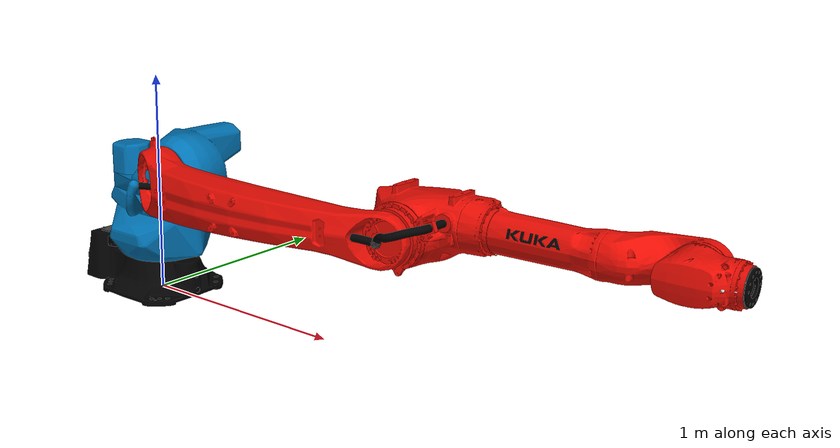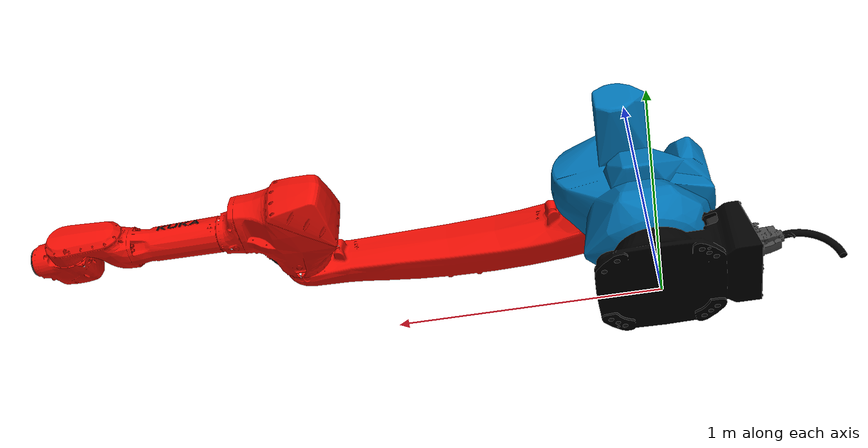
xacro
<?xml version="1.0" encoding="UTF-8"?>
<robot xmlns:xacro="http://ros.org/wiki/xacro" name="kr50_r2500">
  <!-- Import urdf file  -->
  <xacro:include filename="$(find kuka_iontec_support)/urdf/kr50_r2500_macro.xacro"/>
  <xacro:include filename="$(find kuka_iontec_support)/urdf/kr_iontec_ros2_control_macro.xacro"/>
  <!-- Read additional arguments  -->
  <xacro:arg name="driver_version" default="rsi_only"/>
  <xacro:arg name="mode" default="hardware"/>
  <xacro:arg name="gpio_config" default=""/>
  <xacro:arg name="roundtrip_time" default="0"/>
  <xacro:arg name="client_ip" default="0.0.0.0"/>
  <xacro:arg name="client_port" default="59152"/>
  <xacro:arg name="mxa_client_port" default="1337"/>
  <xacro:arg name="controller_ip" default="0.0.0.0"/>
  <xacro:arg name="verify_robot_model" default="true"/>
  <xacro:arg name="prefix" default=""/>
  <xacro:arg name="x" default="0"/>
  <xacro:arg name="y" default="0"/>
  <xacro:arg name="z" default="0"/>
  <xacro:arg name="roll" default="0"/>
  <xacro:arg name="pitch" default="0"/>
  <xacro:arg name="yaw" default="0"/>
  <xacro:arg name="rsi_xml_config_file" default=""/>
  <xacro:kuka_iontec_ros2_control name="$(arg prefix)kr50_r2500" driver_version="$(arg driver_version)" client_ip="$(arg client_ip)" client_port="$(arg client_port)" mxa_client_port="$(arg mxa_client_port)" controller_ip="$(arg controller_ip)" prefix="$(arg prefix)" mode="$(arg mode)" gpio_config="$(arg gpio_config)" roundtrip_time="$(arg roundtrip_time)" verify_robot_model="$(arg verify_robot_model)" rsi_xml_config_file="$(arg rsi_xml_config_file)">
    <ext_axes_ros2_control_joints/>
  </xacro:kuka_iontec_ros2_control>
  <!-- world link -->
  <link name="world"/>
  <!-- robot links, joints -->
  <xacro:kuka_kr50_r2500_robot prefix="$(arg prefix)" package_name="kuka_iontec_support"/>
  <!-- default world - base_link joint -->
  <joint name="$(arg prefix)world-base_link" type="fixed">
    <parent link="world"/>
    <child link="$(arg prefix)base_link"/>
    <origin xyz="$(arg x) $(arg y) $(arg z)" rpy="$(arg roll) $(arg pitch) $(arg yaw)"/>
  </joint>
</robot>

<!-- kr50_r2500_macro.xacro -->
<robot xmlns:xacro="http://www.ros.org/wiki/xacro" name="kr50_r2500">
  <xacro:macro name="kuka_kr50_r2500_robot" params="prefix package_name">
    <link name="${prefix}base"/>
    <link name="${prefix}base_link">
      <collision>
        <geometry>
          <mesh filename="package://${package_name}/meshes/kr50_r2500/collision/base_link.stl"/>
        </geometry>
        <origin rpy="0.0 -0.0 0.0" xyz="0.0 0.0 0.0"/>
      </collision>
      <inertial>
        <inertia ixx="3.21771450042138" ixy="0.0" ixz="0.0" iyy="2.20944166758376" iyz="0.0" izz="3.52194780966785"/>
        <mass value="1.1102E2"/>
        <origin rpy="-0.09552224276473971 0.005165689953881887 1.5692512343174831" xyz="-0.0353407754502021 3.24880558618159E-4 0.169880117603822"/>
      </inertial>
      <visual>
        <geometry>
          <mesh filename="package://${package_name}/meshes/kr50_r2500/visual/base_link.dae"/>
        </geometry>
        <origin rpy="0.0 -0.0 0.0" xyz="0.0 0.0 0.0"/>
      </visual>
    </link>
    <link name="${prefix}flange"/>
    <link name="${prefix}link_1">
      <collision>
        <geometry>
          <mesh filename="package://${package_name}/meshes/kr50_r2500/collision/link_1.stl"/>
        </geometry>
        <origin rpy="-3.141592653589793 0.0 -0.0" xyz="0.0 -2.890166445987754e-17 0.23600000000000002"/>
      </collision>
      <inertial>
        <inertia ixx="5.40709339054184" ixy="0.0" ixz="0.0" iyy="7.71982652844139" iyz="0.0" izz="9.08867781161129"/>
        <mass value="1.75205E2"/>
        <origin rpy="-0.7923258603339001 -0.8943966305036485 2.6984590381230245" xyz="0.0386086184755001 -0.0346095020119289 -0.237989526554607"/>
      </inertial>
      <visual>
        <geometry>
          <mesh filename="package://${package_name}/meshes/kr50_r2500/visual/link_1.dae"/>
        </geometry>
        <origin rpy="-3.141592653589793 0.0 -0.0" xyz="0.0 -2.890166445987754e-17 0.23600000000000002"/>
      </visual>
    </link>
    <link name="${prefix}link_2">
      <collision>
        <geometry>
          <mesh filename="package://${package_name}/meshes/kr50_r2500/collision/link_2.stl"/>
        </geometry>
        <origin rpy="1.5707963267948968 -0.0 1.5707963267948966" xyz="-0.5750000000000001 -0.175 0.05400000000000006"/>
      </collision>
      <inertial>
        <inertia ixx="34.4473098933026" ixy="0.0" ixz="0.0" iyy="1.82338350185872" iyz="0.0" izz="34.9457113145669"/>
        <mass value="1.3116E2"/>
        <origin rpy="2.1123221767766847 -1.457644221591364 -0.5475882223919419" xyz="0.482423909728576 0.0018571058249466298 -0.115943671851174"/>
      </inertial>
      <visual>
        <geometry>
          <mesh filename="package://${package_name}/meshes/kr50_r2500/visual/link_2.dae"/>
        </geometry>
        <origin rpy="1.5707963267948968 -0.0 1.5707963267948966" xyz="-0.5750000000000001 -0.175 0.05400000000000006"/>
      </visual>
    </link>
    <link name="${prefix}link_3">
      <collision>
        <geometry>
          <mesh filename="package://${package_name}/meshes/kr50_r2500/collision/link_3.stl"/>
        </geometry>
        <origin rpy="1.5707963267948968 -0.0 -0.0" xyz="-0.1750000000000001 1.865 0.15150000000000005"/>
      </collision>
      <inertial>
        <inertia ixx="1.92337293034476" ixy="0.0" ixz="0.0" iyy="1.27849052849714" iyz="0.0" izz="2.39171458731211"/>
        <mass value="7.6987E1"/>
        <origin rpy="-1.4493563584878786 -1.5363130245492544 2.877566531592554" xyz="0.0313301089794381 -0.020586332757478502 0.14882084299946702"/>
      </inertial>
      <visual>
        <geometry>
          <mesh filename="package://${package_name}/meshes/kr50_r2500/visual/link_3.dae"/>
        </geometry>
        <origin rpy="1.5707963267948968 -0.0 -0.0" xyz="-0.1750000000000001 1.865 0.15150000000000005"/>
      </visual>
    </link>
    <link name="${prefix}link_4">
      <collision>
        <geometry>
          <mesh filename="package://${package_name}/meshes/kr50_r2500/collision/link_4.stl"/>
        </geometry>
        <origin rpy="1.8369701987210297e-16 1.5707963267948966 0.0" xyz="-1.915 4.025548071885061e-17 0.48305"/>
      </collision>
      <inertial>
        <inertia ixx="0.155169399999395" ixy="0.0" ixz="0.0" iyy="2.40535850557874" iyz="0.0" izz="2.40600523859326"/>
        <mass value="3.6937064569E1"/>
        <origin rpy="0.8285897980910851 -1.4728909399076815 -1.576276607483943" xyz="1.89432198144002E-4 0.024470785786346698 -0.41246255028967"/>
      </inertial>
      <visual>
        <geometry>
          <mesh filename="package://${package_name}/meshes/kr50_r2500/visual/link_4.dae"/>
        </geometry>
        <origin rpy="1.8369701987210297e-16 1.5707963267948966 0.0" xyz="-1.915 4.025548071885061e-17 0.48305"/>
      </visual>
    </link>
    <link name="${prefix}link_5">
      <collision>
        <geometry>
          <mesh filename="package://${package_name}/meshes/kr50_r2500/collision/link_5.stl"/>
        </geometry>
        <origin rpy="1.5707963267948968 -3.749399456654644e-33 -6.123233995736766e-17" xyz="-1.21 1.915 -0.04795000000000001"/>
      </collision>
      <inertial>
        <inertia ixx="0.104253153076611" ixy="0.0" ixz="0.0" iyy="0.080454547765652" iyz="0.0" izz="0.129775394933814"/>
        <mass value="1.6209E1"/>
        <origin rpy="-1.5546090234283156 -1.0268303292864123 -0.02236297629804863" xyz="0.0338747121969276 4.7815719661916203E-4 -0.0563914652353631"/>
      </inertial>
      <visual>
        <geometry>
          <mesh filename="package://${package_name}/meshes/kr50_r2500/visual/link_5.dae"/>
        </geometry>
        <origin rpy="1.5707963267948968 -3.749399456654644e-33 -6.123233995736766e-17" xyz="-1.21 1.915 -0.04795000000000001"/>
      </visual>
    </link>
    <link name="${prefix}link_6">
      <collision>
        <geometry>
          <mesh filename="package://${package_name}/meshes/kr50_r2500/collision/link_6.stl"/>
        </geometry>
        <origin rpy="1.2246467991473532e-16 1.5707963267948966 0.0" xyz="-1.9150000000000003 -7.512976725390683e-17 1.359"/>
      </collision>
      <inertial>
        <inertia ixx="0.00543884122921238" ixy="0.0" ixz="0.0" iyy="0.00497050004638771" iyz="0.0" izz="0.00667989273554355"/>
        <mass value="3.62E0"/>
        <origin rpy="-0.2657207469665607 5.14585534055515E-4 1.571146297496868" xyz="-0.00392541436464088 5.41436464088398E-6 -0.00152140883977901"/>
      </inertial>
      <visual>
        <geometry>
          <mesh filename="package://${package_name}/meshes/kr50_r2500/visual/link_6.dae"/>
        </geometry>
        <origin rpy="1.2246467991473532e-16 1.5707963267948966 0.0" xyz="-1.9150000000000003 -7.512976725390683e-17 1.359"/>
      </visual>
    </link>
    <link name="${prefix}tool0"/>
    <joint name="${prefix}base_link-base" type="fixed">
      <child link="${prefix}base"/>
      <parent link="${prefix}base_link"/>
    </joint>
    <joint name="${prefix}joint_1" type="revolute">
      <axis xyz="0.0 0.0 1.0"/>
      <child link="${prefix}link_1"/>
      <limit effort="5.528892E3" lower="-3.2288591125E0" upper="3.2288591125E0" velocity="3.05432619099008E0"/>
      <origin rpy="3.141592653589793 -0.0 0.0" xyz="0.0 0.0 0.23600000000000002"/>
      <parent link="${prefix}base_link"/>
    </joint>
    <joint name="${prefix}joint_2" type="revolute">
      <axis xyz="0.0 0.0 1.0"/>
      <child link="${prefix}link_2"/>
      <limit effort="5.10434981145836E3" lower="-3.0543261875E0" upper="1.04719755E0" velocity="2.75719614004311E0"/>
      <origin rpy="1.5707963267948966 -0.0 0.0" xyz="0.17500000000000002 0.054 -0.339"/>
      <parent link="${prefix}link_1"/>
    </joint>
    <joint name="${prefix}joint_3" type="revolute">
      <axis xyz="0.0 0.0 1.0"/>
      <child link="${prefix}link_3"/>
      <limit effort="1.44187791653396E3" lower="-2.0943951E0" upper="2.967059725E0" velocity="3.05432619099008E0"/>
      <origin rpy="0.0 -0.0 0.0" xyz="1.29 0.0 -0.0975"/>
      <parent link="${prefix}link_2"/>
    </joint>
    <joint name="${prefix}joint_4" type="revolute">
      <axis xyz="0.0 0.0 1.0"/>
      <child link="${prefix}link_4"/>
      <limit effort="5.35609199111578E2" lower="-3.14159265E0" upper="3.14159265E0" velocity="4.36332312998582E0"/>
      <origin rpy="1.5707963267948966 -0.0 -1.5707963267948966" xyz="0.30805 -0.05 0.1515"/>
      <parent link="${prefix}link_3"/>
    </joint>
    <joint name="${prefix}joint_5" type="revolute">
      <axis xyz="0.0 0.0 1.0"/>
      <child link="${prefix}link_5"/>
      <limit effort="4.83521521925849E2" lower="-2.1816615625E0" upper="2.1816615625E0" velocity="4.36332312998582E0"/>
      <origin rpy="0.0 1.5707963267948966 1.5707963267948966" xyz="0.0 0.047950000000000007 -0.7269500000000001"/>
      <parent link="${prefix}link_4"/>
    </joint>
    <joint name="${prefix}joint_6" type="revolute">
      <axis xyz="0.0 0.0 1.0"/>
      <child link="${prefix}link_6"/>
      <limit effort="3.38503348259152E2" lower="-6.108652375E0" upper="6.108652375E0" velocity="6.28318530717959E0"/>
      <origin rpy="1.5707963267948966 -0.0 -1.5707963267948966" xyz="0.149 0.0 -0.047950000000000007"/>
      <parent link="${prefix}link_5"/>
    </joint>
    <joint name="${prefix}link6-flange" type="fixed">
      <child link="${prefix}flange"/>
      <origin rpy="0.0 1.5707963267948966 0.0" xyz="0.0 0.0 -0.036000000000000004"/>
      <parent link="${prefix}link_6"/>
    </joint>
    <joint name="${prefix}link6-tool0" type="fixed">
      <child link="${prefix}tool0"/>
      <origin rpy="3.141592653589793 1.2246467991473532E-16 3.141592653589793" xyz="0.0 0.0 -0.036000000000000004"/>
      <parent link="${prefix}link_6"/>
    </joint>
  </xacro:macro>
</robot>
